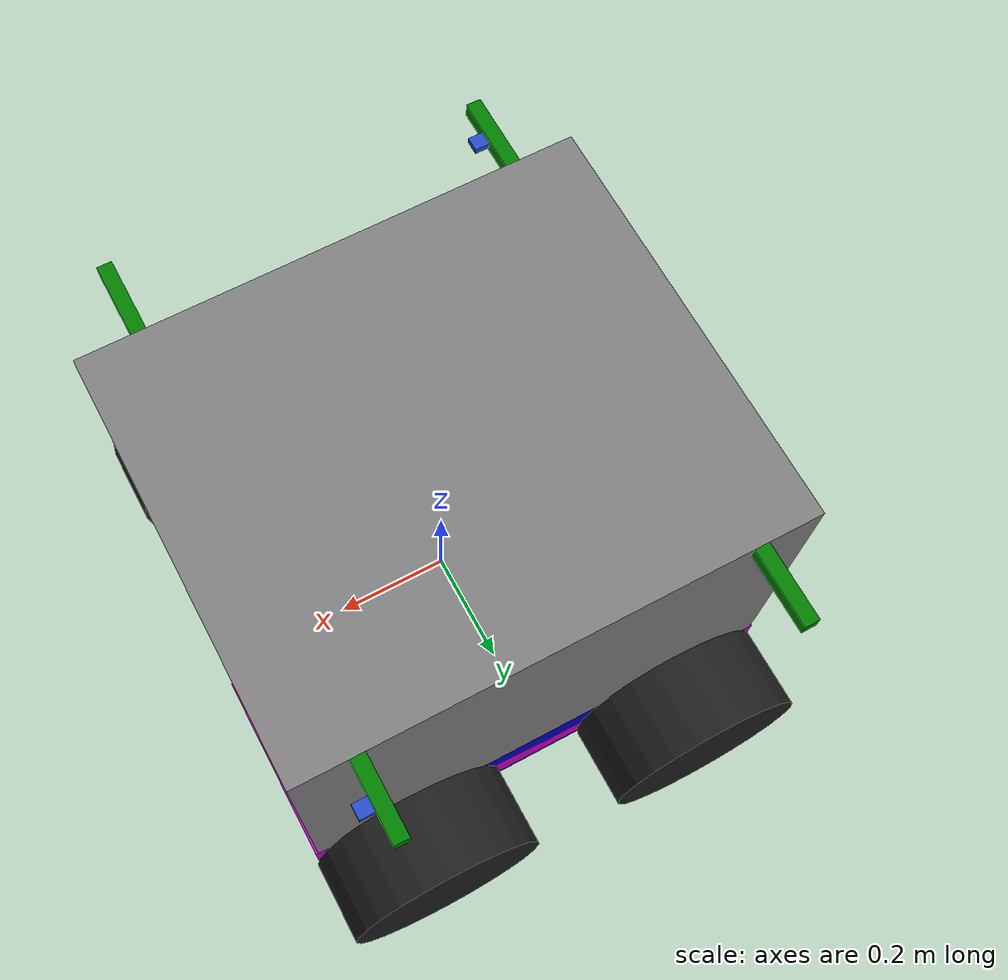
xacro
<?xml version="1.0" encoding="UTF-8"?>
<robot name="bigrdigr" xmlns:xacro="https://www.ros.org/wiki/xacro">
  <xacro:include filename="$(find bigrdigr_description)/urdf/wheel.urdf.xacro"/>
  <xacro:include filename="$(find bigrdigr_description)/urdf/sensors/camera.urdf.xacro"/>
  <xacro:include filename="$(find bigrdigr_description)/urdf/sensors/imu.urdf.xacro"/>
  <xacro:include filename="$(find bigrdigr_description)/urdf/extrusion.urdf.xacro"/>

  <material name="grey">
    <color rgba="0.5 0.5 0.5 1"/>
  </material>
  <material name="dark_grey">
    <color rgba="0.2 0.2 0.2 1"/>
  </material>
  <material name="blue">
    <color rgba="0 0 0.8 1"/>
  </material>
  <material name="red">
    <color rgba="0.8 0 0 1"/>
  </material>
  <material name="green">
    <color rgba="0 0.5 0 1"/>
  </material>
  <material name="purple">
    <color rgba="0.8 0 0.8 1"/>
  </material>
  <material name="orange">
    <color rgba="0.8 0.2 0 1"/>
  </material>

  <!-- Hard coded dimenstions approximating robot -->
  <!-- red axis = x, axis green axis = y, blue axis = z -->

  <!-- The following macros and properties are used to define the links
       and joints of the bot -->
    <!-- Equation for inertial matrix of box/prisim -->
    <xacro:macro name="box_inertial_matrix" params="m l w h">
    	<inertia ixx="${(m*(w*w+h*h))/12.0}" ixy = "0.0" ixz = "0.0"
       				 iyy="${(m*(l*l+h*h))/12.0}" iyz = "0.0"
       				 izz="${(m*(l*l+w*w))/12.0}" />
    </xacro:macro>
    <!-- Equation for inertial matrix of cylinder (rotating around y axis) -->
    <xacro:macro name="cylinder_inertia" params="m r h">
    	<inertia ixx="${(m*(3*r*r+h*h))/12.0}" ixy = "0.0" ixz = "0.0"
       				 iyy="${m*r*r/2.0}"			   iyz = "0.0"
       				 izz="${(m*(3*r*r+h*h))/12.0}"  />
    </xacro:macro>

    <!-- Main dimensions: meters, kg, seconds, rads -->
    <xacro:property name="base_height" value="0.54" />
	  <xacro:property name="base_length" value="0.864925" />
	  <xacro:property name="base_width" value="0.740" />
	  <xacro:property name="base_mass" value="72.0" />

    <xacro:property name="leg_height" value="0.127"/>
    <xacro:property name="leg_length" value="0.739775"/>
    <xacro:property name="leg_width" value="0.0508"/>
    <xacro:property name="leg_mass" value="4"/>

    <xacro:property name="leg_x_origin_to_axle" value="${leg_length/2-.10835}" />
	  <xacro:property name="leg_y_origin_to_axle" value="0.0254" />
	  <xacro:property name="leg_axle_height" value="0.10535" />

    <xacro:property name="drum_height" value=".11809"/>
    <xacro:property name="drum_length" value="${base_length+.01}"/>
    <xacro:property name="drum_width" value=".34"/>
    <xacro:property name="drum_mass" value="2"/>
    <xacro:property name="drum_y_origin_to_base_origin" value="${base_width/2-drum_width/2}"/>
  <!-- End macros and properties -->

  <!-- The following links and joints define the robots components
       and their relationship to eachother -->
    <!-- BASE_LINK represent the frame of the robot -->
	    <link name="base_link">
		    <!-- visual is the model shown in gazebo / rviz -->
		    <visual>
			    <origin xyz="0 0 ${base_height/2.0}" rpy="0 0 0"/>
			    <geometry>
				    <box size=" ${base_length} ${base_width} ${base_height}" />
			    </geometry>
			    <material name="grey"/>
		    </visual>

        <!-- collision and inertial are used by the physics model used
             in simulation -->
		    <collision>
			    <origin xyz="0 0 ${base_height/2.0}" rpy="0 0 0"/>
			    <geometry>
				    <box size="${base_length} ${base_width} ${base_width}"/>
			    </geometry>
		    </collision>

		    <inertial>
			    <origin xyz="0 0 ${base_height/2.0}" rpy="0 0 0"/>
			    <mass value="${base_mass}"/>
			    <box_inertial_matrix m="${base_mass}" h="${base_height}" l="${base_length}" w="${base_width}" />
		    </inertial>
	    </link>

      <!-- Gazebo element covers assigning values not handled by the URDF file format -->
      <gazebo reference="base_link">
        <material>Gazebo/Grey</material>
        <turnGravityOff>false</turnGravityOff>
      </gazebo>
    <!-- End base_link(robot frame) description -->

    <!-- Attaching the left drivetrain to the robot frame -->
      <!-- joint defines position relationship of the child to the parent-->
      <joint name="left_leg_joint" type="fixed">
		    <origin xyz="0 ${base_width/2-leg_width/2} ${-leg_height}" rpy="0 0 0" />
		    <parent link="base_link" />
		    <child link="left_leg" />
	    </joint>

      <!-- LEFT_LEG represents the left of the drive train -->
	    <link name="left_leg">
		    <!-- visual is the model shown in gazebo / rviz -->
		    <visual>
			    <origin xyz="0 0 ${leg_height/2.0}" rpy="0 0 0"/>
			    <geometry>
				    <box size=" ${leg_length} ${leg_width} ${leg_height}" />
			    </geometry>
			    <material name="blue"/>
		    </visual>

        <!-- collision and inertial are used by the physics model used
             in simulation -->
		    <collision>
			    <origin xyz="0 0 ${leg_height/2.0}" rpy="0 0 0"/>
			    <geometry>
				    <box size="${leg_length} ${leg_width} ${leg_width}"/>
			    </geometry>
		    </collision>

		    <inertial>
			    <origin xyz="0 0 ${leg_height/2.0}" rpy="0 0 0"/>
			    <mass value="${leg_mass}"/>
			    <box_inertial_matrix m="${leg_mass}" h="${leg_height}" l="${leg_length}" w="${leg_width}" />
		    </inertial>
	    </link>

      <!-- Gazebo element covers assigning values not handled by the URDF file format -->
      <gazebo reference="left_leg">
        <material>Gazebo/Blue</material>
        <turnGravityOff>false</turnGravityOff>
      </gazebo>
    <!-- End left_leg_joint(left drive train) description -->

    <!-- Attaching the right drivetrain to the robot frame -->
      <!-- joint defines position relationship of the child to the parent-->
      <joint name="right_leg_joint" type="fixed">
        <origin xyz="0 ${-base_width/2+leg_width/2} ${-leg_height}" rpy="0 0 0" />
        <parent link="base_link" />
        <child link="right_leg" />
      </joint>

      <!-- RIGHT_LEG represents the left of the drive train -->
      <link name="right_leg">
        <!-- visual is the model shown in gazebo / rviz -->
        <visual>
          <origin xyz="0 0 ${leg_height/2.0}" rpy="0 0 0"/>
          <geometry>
            <box size=" ${leg_length} ${leg_width} ${leg_height}" />
          </geometry>
          <material name="blue"/>
        </visual>

        <!-- collision and inertial are used by the physics model used
             in simulation -->
        <collision>
          <origin xyz="0 0 ${leg_height/2.0}" rpy="0 0 0"/>
          <geometry>
            <box size="${leg_length} ${leg_width} ${leg_width}"/>
          </geometry>
        </collision>

        <inertial>
          <origin xyz="0 0 ${leg_height/2.0}" rpy="0 0 0"/>
          <mass value="${leg_mass}"/>
          <box_inertial_matrix m="${leg_mass}" h="${leg_height}" l="${leg_length}" w="${leg_width}" />
        </inertial>
      </link>

      <!-- Gazebo element covers assigning values not handled by the URDF file format -->
      <gazebo reference="right_leg">
        <material>Gazebo/Blue</material>
        <turnGravityOff>false</turnGravityOff>
      </gazebo>
    <!-- End right_leg_joint(right drive train) description -->

    <!-- Attaching the drum to the robot frame -->
    <!-- joint defines position relationship of the child to the parent-->
    <joint name="drum_joint" type="fixed">
		  <origin xyz="0 ${drum_y_origin_to_base_origin} ${-drum_height/2}" rpy="0 0 0" />
		  <parent link="base_link" />
		  <child link="drum" />
	  </joint>

    <!-- DRUM represents the digging wheel -->
	  <link name="drum">
      <!-- visual is the model shown in gazebo / rviz -->
      <visual>
        <origin xyz="0 0 0" rpy="0 0 0"/>
        <geometry>
          <box size=" ${drum_length} ${drum_width} ${drum_height}" />
        </geometry>
        <material name="purple"/>
      </visual>

      <!-- collision and inertial are used by the physics model used
           in simulation -->
      <collision>
        <origin xyz="0 0 0" rpy="0 0 0"/>
        <geometry>
          <box size="${drum_length} ${drum_width} ${drum_width}"/>
        </geometry>
      </collision>

      <inertial>
        <origin xyz="0 0 0" rpy="0 0 0"/>
        <mass value="${drum_mass}"/>
        <box_inertial_matrix m="${drum_mass}" h="${drum_height}" l="${drum_length}" w="${drum_width}" />
      </inertial>
	  </link>

    <!-- Gazebo element covers assigning values not handled by the URDF file format -->
    <gazebo reference="drum">
      <material>Gazebo/Purple</material>
      <turnGravityOff>false</turnGravityOff>
    </gazebo>
    <!-- End drum description -->
  <!-- End links and joints -->

  <!-- The following represent extrusions from the frame and drivetrain
       which are defined in wheel.urdf.xacro and extrusion.urdf.xacro -->
    <!-- wheels -->
    <wheel prefix="front_left" leg="left_leg" x="1" y="1"/>
    <wheel prefix="front_right" leg="right_leg" x="1" y="-1"/>
    <wheel prefix="back_left" leg="left_leg" x="-1" y="1"/>
    <wheel prefix="back_right" leg="right_leg" x="-1" y="-1"/>

    <!-- extrusions for cameras / sensors -->
    <extrusion prefix="front_left" x="1" y="1"/>
    <extrusion prefix="front_right" x="1" y="-1"/>
    <extrusion prefix="back_left" x="-1" y="1"/>
    <extrusion prefix="back_right" x="-1" y="-1"/>
  <!-- End wheels and extrusions -->

  <!-- The following represent the camera placementon the extrusions -->
    <xacro:arg name="cameras" default="false"/>
    <xacro:property name="useCams" value="$(arg cameras)"/>

    <xacro:if value="${useCams == 'true'}">
      <camera_macro number="1" y="1" extrusion="front_left_extrusion" spin="0"/>
      <camera_macro number="2" y="-1" extrusion="front_right_extrusion" spin="0"/>
      <camera_macro number="3" y="1" extrusion="back_left_extrusion" spin="${PI}"/>
      <camera_macro number="4" y="-1" extrusion="back_right_extrusion" spin="${PI}"/>
    </xacro:if>
  <!-- End cameras -->

  <!-- The following defines the positions of the IMU and Decawave sensors -->
    <!-- imu and deca front left, back right. in front of extrusion -->
    <imu number="1" x="1" y="1" extrusion="front_left_extrusion"/>
    <imu number="2" x="1" y="-1" extrusion="back_right_extrusion"/>
  <!-- End sensors -->

  <!-- skid steer plugin handles driving for us -->
	<gazebo>
	  <plugin name="skid_steer_drive_controller" filename="libgazebo_ros_skid_steer_drive.so">
	    <updateRate>100.0</updateRate>
	    <robotNamespace>/bigrdigr</robotNamespace>
			<commandTopic>cmd_vel</commandTopic>
			<odometryTopic>odometry/wheel</odometryTopic>
	    <leftFrontJoint>front_left_wheel_joint</leftFrontJoint>
	    <rightFrontJoint>front_right_wheel_joint</rightFrontJoint>
	    <leftRearJoint>back_left_wheel_joint</leftRearJoint>
	    <rightRearJoint>back_right_wheel_joint</rightRearJoint>
	    <wheelSeparation>${2*base_width}</wheelSeparation>
	    <wheelDiameter>${2*wheel_radius}</wheelDiameter>
	    <robotBaseFrame>base_link</robotBaseFrame>
	    <torque>20</torque>
	    <broadcastTF>true</broadcastTF>
			<legacyMode>false</legacyMode>
	  </plugin>
	</gazebo>

  <gazebo>
  <plugin name="gazebo_ros_control" filename="libgazebo_ros_control.so">
    <robotNamespace>/bigrdigr</robotNamespace>
    <robotSimType>gazebo_ros_control/DefaultRobotHWSim</robotSimType>
    <legacyMode>false</legacyMode>
  </plugin>
  </gazebo>

</robot>

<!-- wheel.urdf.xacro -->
<robot name="bigrdigr" xmlns:xacro="https://www.ros.org/wiki/xacro">

	<!-- Properties which define the robots wheels -->
	  <!-- Main dimensions: meters, kg, seconds, rads -->
	  <xacro:property name="PI" value="3.141592653589793238462643383279502884197" />
	  <xacro:property name="wheel_width" value=".15" />
	  <xacro:property name="wheel_radius" value=".18035" />
	  <xacro:property name="wheel_mass" value="2" />
  <!-- end properties -->

	<!--here is a macro for a wheel -->
	<xacro:macro name="wheel_link" params="prefix">
		<link name="${prefix}_wheel">
			<visual>
				<origin xyz="0 0 0" rpy="${PI/2.0} 0 0"/>
	      <geometry>
          <cylinder length="${wheel_width}" radius="${wheel_radius}" />
        </geometry>
        <material name="light_black"/>
			</visual>

	    <collision>
        <origin xyz="0 0 0" rpy="${PI/2.0} 0 0" />
        <geometry>
          <cylinder length="${wheel_width}" radius="${wheel_radius}" />
       	</geometry>
	    </collision>

	    <inertial>
       	<origin xyz="0 0 0" />
      	<mass value="${wheel_mass}" />
       	<cylinder_inertia m="${wheel_mass}" h="${wheel_width}" r="${wheel_radius}"/>
      </inertial>
		</link>
	</xacro:macro>

	<xacro:macro name="wheel_joint" params="prefix leg x y">
		<joint name="${prefix}_wheel_joint" type="continuous">
			<parent link="${leg}" />
			<child 	link="${prefix}_wheel" />
      <origin xyz="${x*leg_x_origin_to_axle} ${y*(wheel_radius/2+leg_width/4)} ${leg_axle_height-leg_height/2}" rpy="0 0 0"/>
      <dynamics damping="0.5" friction="0.1"/> <!-- get real later N*m*s/rad damp N*m friction-->
      <limit effort="1000" velocity="10"/> <!-- simmulate motors, max velocity and max joint effort -->
      <axis xyz="0 1 0"/> <!-- will rotate for y axis -->
    </joint>
	</xacro:macro>

	<xacro:macro name="wheel_gazebo" params="prefix">
		<gazebo reference="${prefix}_wheel">
			<mu1>0.3</mu1>
			<mu2>0.3</mu2>
			<kp>1000000.0</kp>
			<kd>1.0</kd>
			<minDepth>0.001</minDepth>
			<maxVel>1</maxVel>
			<fdir1>1 0 0</fdir1>
			<material>Gazebo/FlatBlack</material>
		</gazebo>
	</xacro:macro>

  <xacro:macro name="wheel_trans" params="prefix">
    <transmission name="${prefix}_wheel_trans">
      <type>transmission_interface/SimpleTransmission</type>
      <joint name="${prefix}_wheel_joint">
        <hardwareInterface>hardware_interface/VelocityJointInterface</hardwareInterface>
      </joint>
      <actuator name="${prefix}_wheel_motor">
        <hardwareInterface>hardware_interface/VelocityJointInterface</hardwareInterface>
        <mechanicalReduction>1</mechanicalReduction>
      </actuator>
    </transmission>
  </xacro:macro>

	<xacro:macro name="wheel" params="prefix leg x y">
		<wheel_link prefix="${prefix}"/>
		<wheel_joint prefix="${prefix}" leg="${leg}" x="${x}" y="${y}"/>
		<wheel_gazebo prefix="${prefix}"/>
		<wheel_trans prefix="${prefix}"/>
	</xacro:macro>

</robot>

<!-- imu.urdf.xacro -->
<robot name="bigrdigr" xmlns:xacro="https://www.ros.org/wiki/xacro">

  <!-- Main dimensions: meters, kg, seconds, rads -->
  <xacro:property name="imu_length" value="0.025" />
  <xacro:property name="imu_width" value="0.025" />
  <xacro:property name="imu_height" value="0.01" />
  <xacro:property name="imu_visual" value="true"/>
  <xacro:property name="pi" value="3.1415"/>

  <xacro:macro name="imu_joint" params="number x y extrusion">
    <joint name="imu${number}_joint" type="fixed">
      <axis rpy="0 0 0" xyz="0 1 0"/>
      <parent link="${extrusion}" />
      <child link="imu${number}_link" />
      <origin xyz="${x*(extrusion_length/2+imu_length/2)} ${y*extrusion_width/2} 0" rpy="${pi} 0 0" />
    </joint>
  </xacro:macro>

  <xacro:macro name="imu_link" params="number">
    <link name="imu${number}_link">
      <visual>
        <origin xyz="0 0 0" rpy="0 0 0" />
        <geometry>
          <box size="${imu_length} ${imu_width} ${imu_height}" />
        </geometry>
        <materal name="blue"/>
      </visual>

      <collision>
        <origin xyz="0 0 0" rpy="0 0 0" />
        <geometry>
          <box size="${imu_length} ${imu_width} ${imu_height}" />
        </geometry>
      </collision>
    </link>
  </xacro:macro>

  <xacro:macro name="imu_gazebo" params="number">
    <gazebo reference="imu${number}_link">
  		<gravity>true</gravity>
  		<sensor type="imu" name="imu${number}">
  			<always_on>true</always_on>
  			<update_rate>100</update_rate>
  			<visualize>${imu_visual}</visualize>
  			<topic>imu_data</topic>
  			<plugin filename="libgazebo_ros_imu_sensor.so" name="imu_plugin">
  				<topicName>imu${number}/data</topicName>
  				<bodyName>imu${number}_link</bodyName>
  				<updateRateHZ>10.0</updateRateHZ>
  				<gaussianNoise>0.0</gaussianNoise>
  				<xyzOffset>0 0 0</xyzOffset>
  				<rpyOffset>0 0 0</rpyOffset>
  				<frameName>imu${number}_link</frameName>
  			</plugin>
  			<pose>0 0 0 0 0 0</pose>
  		</sensor>
  		<material>Gazebo/Blue</material>
  	</gazebo>
  </xacro:macro>

  <xacro:macro name="imu" params="number x y extrusion">
    <imu_joint number="${number}" x="${x}" y="${y}" extrusion="${extrusion}"/>
    <imu_link number="${number}"/>
    <imu_gazebo number="${number}"/>
  </xacro:macro>

</robot>

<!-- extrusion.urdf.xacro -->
<robot name="bigrdigr" xmlns:xacro="https://www.ros.org/wiki/xacro">

  <!-- Properties describe size of sensor boxes located at corners of
       the robot's frame -->
    <!-- Main dimensions: meters, kg, seconds, rads -->
    <xacro:property name="extrusion_height" value="0.0254"/>
    <xacro:property name="extrusion_length" value="0.0254"/>
    <xacro:property name="extrusion_width" value="0.13254"/>
    <xacro:property name="extrusion_mass" value="0.5"/>
    <xacro:property name="extrusion_edge_to_base_edge" value="0.0946"/>
  <!-- End properties -->

  <!-- Attaching extrusions(sensor boxes) to the frame -->
    <!-- Macro which creates joints for the sensor boxes -->
    <xacro:macro name="extrusion_joint" params="prefix x y">
      <joint name="${prefix}_extrusion_joint" type="fixed">
        <origin xyz="${x*(base_length/2-extrusion_length/2-extrusion_edge_to_base_edge)} ${y*base_width/2} ${base_height-extrusion_height/2}" rpy="0 0 0"/>
        <parent link="base_link"/>
        <child link="${prefix}_extrusion"/>
    	</joint>
    </xacro:macro>

    <!-- Macro which creates links for the sensor boxes -->
    <xacro:macro name="extrusion_link" params="prefix y">
    	<link name="${prefix}_extrusion">
    		<!-- visual is the model shown in gazebo / rviz -->
    		<visual>
    			<origin xyz="0 ${y*extrusion_width/2} 0" rpy="0 0 0"/>
    			<geometry>
    				<box size=" ${extrusion_length} ${extrusion_width} ${extrusion_height}" />
    			</geometry>
    			<material name="green"/>
    		</visual>

        <!-- collision and inertial are used by the physics model used
             in simulation -->
    		<collision>
    			<origin xyz="0 ${y*extrusion_width/2} 0" rpy="0 0 0"/>
    			<geometry>
            <box size=" ${extrusion_length} ${extrusion_width} ${extrusion_height}" />
    			</geometry>
    		</collision>

    		<inertial>
    			<origin xyz="0 0 ${leg_height/2.0}" rpy="0 0 0"/>
    			<mass value="${leg_mass}"/>
    			<box_inertial_matrix m="${leg_mass}" h="${leg_height}" l="${leg_length}" w="${leg_width}" />
    		</inertial>
    	</link>
    </xacro:macro>

    <xacro:macro name="extrusion_gazebo" params="prefix">
      <gazebo reference="${prefix}_extrusion">
        <material>Gazebo/Green</material>
        <turnGravityOff>false</turnGravityOff>
      </gazebo>
    </xacro:macro>
  <!-- End extrusion description -->

  <!-- Generic extrusion creation, possibly not needed? -->
  <xacro:macro name="extrusion" params="prefix x y">
    <extrusion_link prefix="${prefix}" y="${y}"/>
    <extrusion_joint prefix="${prefix}" x="${x}" y="${y}"/>
    <extrusion_gazebo prefix="${prefix}"/>
  </xacro:macro>

</robot>
